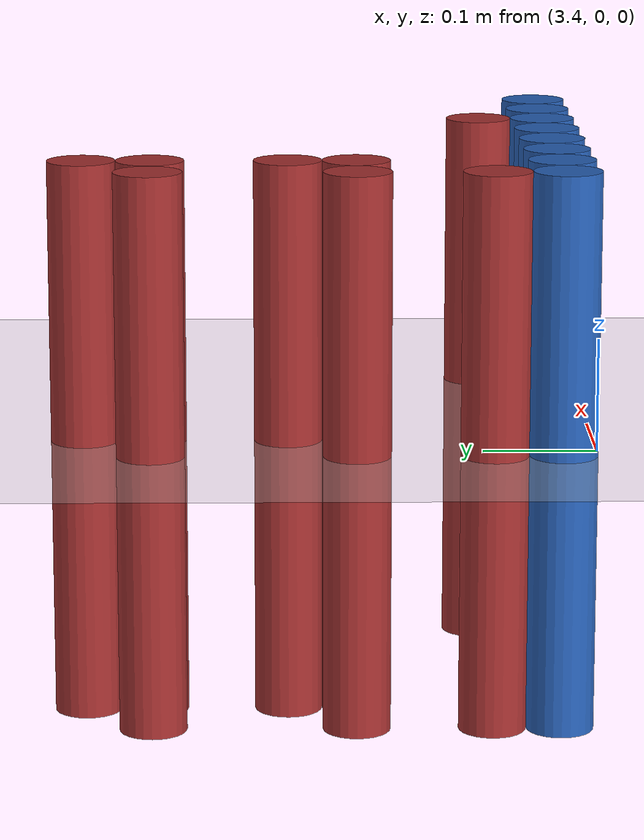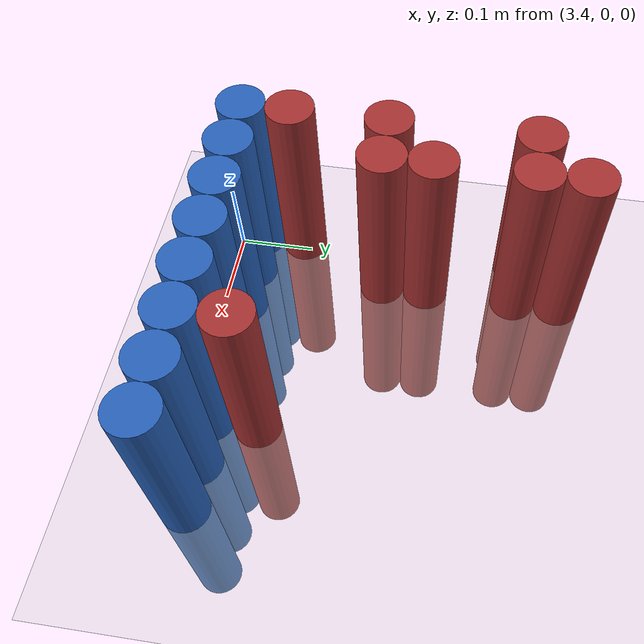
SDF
<sdf version="1.6">
 <world name="default">
  <model name="ground_plane">
   <static>1</static>
   <link name="link">
    <collision name="collision">
     <geometry><plane><normal>0 0 1</normal><size>100 100</size></plane></geometry>
     <surface><friction><ode><mu>100</mu><mu2>50</mu2></ode></friction></surface>
    </collision>
    <visual name="visual">
     <cast_shadows>0</cast_shadows>
     <geometry><plane><normal>0 0 1</normal><size>100 100</size></plane></geometry>
     <material>
      <script><uri>file://media/materials/scripts/gazebo.material</uri><name>Gazebo/Grey</name></script>
     </material>
    </visual>
   </link>
  </model>
  <model name="unit_cylinder_179">
   <static>1</static>
   <pose>3.450000 0.450000 0.000000 0.000000 0.000000 0.000000</pose>
   <link name="link">
    <inertial>
     <mass>1</mass>
     <inertia><ixx>0.145833</ixx><ixy>0</ixy><ixz>0</ixz><iyy>0.145833</iyy><iyz>0</iyz><izz>0.125</izz></inertia>
    </inertial>
    <collision name="collision">
     <geometry><cylinder><radius>0.030000</radius><length>0.5</length></cylinder></geometry>
    </collision>
    <visual name="visual">
     <geometry><cylinder><radius>0.030000</radius><length>0.5</length></cylinder></geometry>
     <material>
      <ambient>0.648000 0.192000 0.192000 1</ambient>
      <diffuse>0.648000 0.192000 0.192000 1</diffuse>
     </material>
     <material>
      <script><name>Gazebo/Grey</name><uri>file://media/materials/scripts/gazebo.material</uri></script>
     </material>
    </visual>
   </link>
  </model>
  <model name="unit_cylinder_184">
   <static>1</static>
   <pose>3.390000 0.390000 0.000000 0.000000 0.000000 0.000000</pose>
   <link name="link">
    <inertial>
     <mass>1</mass>
     <inertia><ixx>0.145833</ixx><ixy>0</ixy><ixz>0</ixz><iyy>0.145833</iyy><iyz>0</iyz><izz>0.125</izz></inertia>
    </inertial>
    <collision name="collision">
     <geometry><cylinder><radius>0.030000</radius><length>0.5</length></cylinder></geometry>
    </collision>
    <visual name="visual">
     <geometry><cylinder><radius>0.030000</radius><length>0.5</length></cylinder></geometry>
     <material>
      <ambient>0.648000 0.192000 0.192000 1</ambient>
      <diffuse>0.648000 0.192000 0.192000 1</diffuse>
     </material>
     <material>
      <script><name>Gazebo/Grey</name><uri>file://media/materials/scripts/gazebo.material</uri></script>
     </material>
    </visual>
   </link>
  </model>
  <model name="unit_cylinder_185">
   <static>1</static>
   <pose>3.450000 0.390000 0.000000 0.000000 0.000000 0.000000</pose>
   <link name="link">
    <inertial>
     <mass>1</mass>
     <inertia><ixx>0.145833</ixx><ixy>0</ixy><ixz>0</ixz><iyy>0.145833</iyy><iyz>0</iyz><izz>0.125</izz></inertia>
    </inertial>
    <collision name="collision">
     <geometry><cylinder><radius>0.030000</radius><length>0.5</length></cylinder></geometry>
    </collision>
    <visual name="visual">
     <geometry><cylinder><radius>0.030000</radius><length>0.5</length></cylinder></geometry>
     <material>
      <ambient>0.648000 0.192000 0.192000 1</ambient>
      <diffuse>0.648000 0.192000 0.192000 1</diffuse>
     </material>
     <material>
      <script><name>Gazebo/Grey</name><uri>file://media/materials/scripts/gazebo.material</uri></script>
     </material>
    </visual>
   </link>
  </model>
  <model name="unit_cylinder_194">
   <static>1</static>
   <pose>3.450000 0.270000 0.000000 0.000000 0.000000 0.000000</pose>
   <link name="link">
    <inertial>
     <mass>1</mass>
     <inertia><ixx>0.145833</ixx><ixy>0</ixy><ixz>0</ixz><iyy>0.145833</iyy><iyz>0</iyz><izz>0.125</izz></inertia>
    </inertial>
    <collision name="collision">
     <geometry><cylinder><radius>0.030000</radius><length>0.5</length></cylinder></geometry>
    </collision>
    <visual name="visual">
     <geometry><cylinder><radius>0.030000</radius><length>0.5</length></cylinder></geometry>
     <material>
      <ambient>0.648000 0.192000 0.192000 1</ambient>
      <diffuse>0.648000 0.192000 0.192000 1</diffuse>
     </material>
     <material>
      <script><name>Gazebo/Grey</name><uri>file://media/materials/scripts/gazebo.material</uri></script>
     </material>
    </visual>
   </link>
  </model>
  <model name="unit_cylinder_198">
   <static>1</static>
   <pose>3.390000 0.210000 0.000000 0.000000 0.000000 0.000000</pose>
   <link name="link">
    <inertial>
     <mass>1</mass>
     <inertia><ixx>0.145833</ixx><ixy>0</ixy><ixz>0</ixz><iyy>0.145833</iyy><iyz>0</iyz><izz>0.125</izz></inertia>
    </inertial>
    <collision name="collision">
     <geometry><cylinder><radius>0.030000</radius><length>0.5</length></cylinder></geometry>
    </collision>
    <visual name="visual">
     <geometry><cylinder><radius>0.030000</radius><length>0.5</length></cylinder></geometry>
     <material>
      <ambient>0.648000 0.192000 0.192000 1</ambient>
      <diffuse>0.648000 0.192000 0.192000 1</diffuse>
     </material>
     <material>
      <script><name>Gazebo/Grey</name><uri>file://media/materials/scripts/gazebo.material</uri></script>
     </material>
    </visual>
   </link>
  </model>
  <model name="unit_cylinder_199">
   <static>1</static>
   <pose>3.450000 0.210000 0.000000 0.000000 0.000000 0.000000</pose>
   <link name="link">
    <inertial>
     <mass>1</mass>
     <inertia><ixx>0.145833</ixx><ixy>0</ixy><ixz>0</ixz><iyy>0.145833</iyy><iyz>0</iyz><izz>0.125</izz></inertia>
    </inertial>
    <collision name="collision">
     <geometry><cylinder><radius>0.030000</radius><length>0.5</length></cylinder></geometry>
    </collision>
    <visual name="visual">
     <geometry><cylinder><radius>0.030000</radius><length>0.5</length></cylinder></geometry>
     <material>
      <ambient>0.648000 0.192000 0.192000 1</ambient>
      <diffuse>0.648000 0.192000 0.192000 1</diffuse>
     </material>
     <material>
      <script><name>Gazebo/Grey</name><uri>file://media/materials/scripts/gazebo.material</uri></script>
     </material>
    </visual>
   </link>
  </model>
  <model name="unit_cylinder_212">
   <static>1</static>
   <pose>3.390000 0.090000 0.000000 0.000000 0.000000 0.000000</pose>
   <link name="link">
    <inertial>
     <mass>1</mass>
     <inertia><ixx>0.145833</ixx><ixy>0</ixy><ixz>0</ixz><iyy>0.145833</iyy><iyz>0</iyz><izz>0.125</izz></inertia>
    </inertial>
    <collision name="collision">
     <geometry><cylinder><radius>0.030000</radius><length>0.5</length></cylinder></geometry>
    </collision>
    <visual name="visual">
     <geometry><cylinder><radius>0.030000</radius><length>0.5</length></cylinder></geometry>
     <material>
      <ambient>0.648000 0.192000 0.192000 1</ambient>
      <diffuse>0.648000 0.192000 0.192000 1</diffuse>
     </material>
     <material>
      <script><name>Gazebo/Grey</name><uri>file://media/materials/scripts/gazebo.material</uri></script>
     </material>
    </visual>
   </link>
  </model>
  <model name="unit_cylinder_213">
   <static>1</static>
   <pose>3.690000 0.090000 0.000000 0.000000 0.000000 0.000000</pose>
   <link name="link">
    <inertial>
     <mass>1</mass>
     <inertia><ixx>0.145833</ixx><ixy>0</ixy><ixz>0</ixz><iyy>0.145833</iyy><iyz>0</iyz><izz>0.125</izz></inertia>
    </inertial>
    <collision name="collision">
     <geometry><cylinder><radius>0.030000</radius><length>0.5</length></cylinder></geometry>
    </collision>
    <visual name="visual">
     <geometry><cylinder><radius>0.030000</radius><length>0.5</length></cylinder></geometry>
     <material>
      <ambient>0.648000 0.192000 0.192000 1</ambient>
      <diffuse>0.648000 0.192000 0.192000 1</diffuse>
     </material>
     <material>
      <script><name>Gazebo/Grey</name><uri>file://media/materials/scripts/gazebo.material</uri></script>
     </material>
    </visual>
   </link>
  </model>
  <model name="unit_cylinder_236">
   <static>1</static>
   <pose>3.390000 0.030000 0.000000 0.000000 0.000000 0.000000</pose>
   <link name="link">
    <inertial>
     <mass>1</mass>
     <inertia><ixx>0.145833</ixx><ixy>0</ixy><ixz>0</ixz><iyy>0.145833</iyy><iyz>0</iyz><izz>0.125</izz></inertia>
    </inertial>
    <collision name="collision">
     <geometry><cylinder><radius>0.030000</radius><length>0.5</length></cylinder></geometry>
    </collision>
    <visual name="visual">
     <geometry><cylinder><radius>0.030000</radius><length>0.5</length></cylinder></geometry>
     <material>
      <ambient>0.152000 0.379000 0.720000 1</ambient>
      <diffuse>0.152000 0.379000 0.720000 1</diffuse>
     </material>
     <material>
      <script><name>Gazebo/Grey</name><uri>file://media/materials/scripts/gazebo.material</uri></script>
     </material>
    </visual>
   </link>
  </model>
  <model name="unit_cylinder_237">
   <static>1</static>
   <pose>3.450000 0.030000 0.000000 0.000000 0.000000 0.000000</pose>
   <link name="link">
    <inertial>
     <mass>1</mass>
     <inertia><ixx>0.145833</ixx><ixy>0</ixy><ixz>0</ixz><iyy>0.145833</iyy><iyz>0</iyz><izz>0.125</izz></inertia>
    </inertial>
    <collision name="collision">
     <geometry><cylinder><radius>0.030000</radius><length>0.5</length></cylinder></geometry>
    </collision>
    <visual name="visual">
     <geometry><cylinder><radius>0.030000</radius><length>0.5</length></cylinder></geometry>
     <material>
      <ambient>0.152000 0.379000 0.720000 1</ambient>
      <diffuse>0.152000 0.379000 0.720000 1</diffuse>
     </material>
     <material>
      <script><name>Gazebo/Grey</name><uri>file://media/materials/scripts/gazebo.material</uri></script>
     </material>
    </visual>
   </link>
  </model>
  <model name="unit_cylinder_238">
   <static>1</static>
   <pose>3.510000 0.030000 0.000000 0.000000 0.000000 0.000000</pose>
   <link name="link">
    <inertial>
     <mass>1</mass>
     <inertia><ixx>0.145833</ixx><ixy>0</ixy><ixz>0</ixz><iyy>0.145833</iyy><iyz>0</iyz><izz>0.125</izz></inertia>
    </inertial>
    <collision name="collision">
     <geometry><cylinder><radius>0.030000</radius><length>0.5</length></cylinder></geometry>
    </collision>
    <visual name="visual">
     <geometry><cylinder><radius>0.030000</radius><length>0.5</length></cylinder></geometry>
     <material>
      <ambient>0.152000 0.379000 0.720000 1</ambient>
      <diffuse>0.152000 0.379000 0.720000 1</diffuse>
     </material>
     <material>
      <script><name>Gazebo/Grey</name><uri>file://media/materials/scripts/gazebo.material</uri></script>
     </material>
    </visual>
   </link>
  </model>
  <model name="unit_cylinder_239">
   <static>1</static>
   <pose>3.570000 0.030000 0.000000 0.000000 0.000000 0.000000</pose>
   <link name="link">
    <inertial>
     <mass>1</mass>
     <inertia><ixx>0.145833</ixx><ixy>0</ixy><ixz>0</ixz><iyy>0.145833</iyy><iyz>0</iyz><izz>0.125</izz></inertia>
    </inertial>
    <collision name="collision">
     <geometry><cylinder><radius>0.030000</radius><length>0.5</length></cylinder></geometry>
    </collision>
    <visual name="visual">
     <geometry><cylinder><radius>0.030000</radius><length>0.5</length></cylinder></geometry>
     <material>
      <ambient>0.152000 0.379000 0.720000 1</ambient>
      <diffuse>0.152000 0.379000 0.720000 1</diffuse>
     </material>
     <material>
      <script><name>Gazebo/Grey</name><uri>file://media/materials/scripts/gazebo.material</uri></script>
     </material>
    </visual>
   </link>
  </model>
  <model name="unit_cylinder_240">
   <static>1</static>
   <pose>3.630000 0.030000 0.000000 0.000000 0.000000 0.000000</pose>
   <link name="link">
    <inertial>
     <mass>1</mass>
     <inertia><ixx>0.145833</ixx><ixy>0</ixy><ixz>0</ixz><iyy>0.145833</iyy><iyz>0</iyz><izz>0.125</izz></inertia>
    </inertial>
    <collision name="collision">
     <geometry><cylinder><radius>0.030000</radius><length>0.5</length></cylinder></geometry>
    </collision>
    <visual name="visual">
     <geometry><cylinder><radius>0.030000</radius><length>0.5</length></cylinder></geometry>
     <material>
      <ambient>0.152000 0.379000 0.720000 1</ambient>
      <diffuse>0.152000 0.379000 0.720000 1</diffuse>
     </material>
     <material>
      <script><name>Gazebo/Grey</name><uri>file://media/materials/scripts/gazebo.material</uri></script>
     </material>
    </visual>
   </link>
  </model>
  <model name="unit_cylinder_241">
   <static>1</static>
   <pose>3.690000 0.030000 0.000000 0.000000 0.000000 0.000000</pose>
   <link name="link">
    <inertial>
     <mass>1</mass>
     <inertia><ixx>0.145833</ixx><ixy>0</ixy><ixz>0</ixz><iyy>0.145833</iyy><iyz>0</iyz><izz>0.125</izz></inertia>
    </inertial>
    <collision name="collision">
     <geometry><cylinder><radius>0.030000</radius><length>0.5</length></cylinder></geometry>
    </collision>
    <visual name="visual">
     <geometry><cylinder><radius>0.030000</radius><length>0.5</length></cylinder></geometry>
     <material>
      <ambient>0.152000 0.379000 0.720000 1</ambient>
      <diffuse>0.152000 0.379000 0.720000 1</diffuse>
     </material>
     <material>
      <script><name>Gazebo/Grey</name><uri>file://media/materials/scripts/gazebo.material</uri></script>
     </material>
    </visual>
   </link>
  </model>
  <model name="unit_cylinder_242">
   <static>1</static>
   <pose>3.750000 0.030000 0.000000 0.000000 0.000000 0.000000</pose>
   <link name="link">
    <inertial>
     <mass>1</mass>
     <inertia><ixx>0.145833</ixx><ixy>0</ixy><ixz>0</ixz><iyy>0.145833</iyy><iyz>0</iyz><izz>0.125</izz></inertia>
    </inertial>
    <collision name="collision">
     <geometry><cylinder><radius>0.030000</radius><length>0.5</length></cylinder></geometry>
    </collision>
    <visual name="visual">
     <geometry><cylinder><radius>0.030000</radius><length>0.5</length></cylinder></geometry>
     <material>
      <ambient>0.152000 0.379000 0.720000 1</ambient>
      <diffuse>0.152000 0.379000 0.720000 1</diffuse>
     </material>
     <material>
      <script><name>Gazebo/Grey</name><uri>file://media/materials/scripts/gazebo.material</uri></script>
     </material>
    </visual>
   </link>
  </model>
  <model name="unit_cylinder_243">
   <static>1</static>
   <pose>3.810000 0.030000 0.000000 0.000000 0.000000 0.000000</pose>
   <link name="link">
    <inertial>
     <mass>1</mass>
     <inertia><ixx>0.145833</ixx><ixy>0</ixy><ixz>0</ixz><iyy>0.145833</iyy><iyz>0</iyz><izz>0.125</izz></inertia>
    </inertial>
    <collision name="collision">
     <geometry><cylinder><radius>0.030000</radius><length>0.5</length></cylinder></geometry>
    </collision>
    <visual name="visual">
     <geometry><cylinder><radius>0.030000</radius><length>0.5</length></cylinder></geometry>
     <material>
      <ambient>0.152000 0.379000 0.720000 1</ambient>
      <diffuse>0.152000 0.379000 0.720000 1</diffuse>
     </material>
     <material>
      <script><name>Gazebo/Grey</name><uri>file://media/materials/scripts/gazebo.material</uri></script>
     </material>
    </visual>
   </link>
  </model>
 </world>
</sdf>
